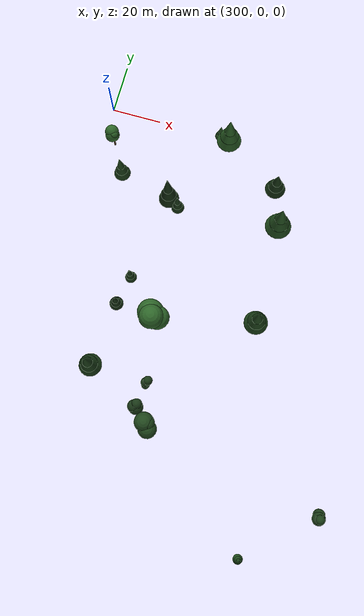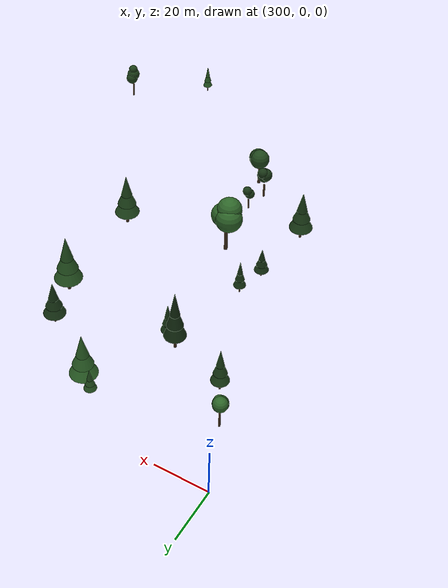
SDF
<sdf version="1.9">
 <world name="detection_world_terrain">
  <model name="tree_2">
   <static>true</static>
   <pose>343.67 -84.83 13.31 0 0 1.64</pose>
   <link name="link">
    <visual name="trunk">
     <pose>0 0 4.16 0 0 0</pose>
     <geometry><cylinder><radius>0.64</radius><length>8.32</length></cylinder></geometry>
     <material><ambient>0.28 0.2 0.12 1</ambient><diffuse>0.28 0.2 0.12 1</diffuse></material>
    </visual>
    <visual name="canopy0">
     <pose>-0.61 0.74 18.41 0 0 0</pose>
     <geometry><sphere><radius>4.48</radius></sphere></geometry>
     <material><ambient>0.178 0.397 0.159 1</ambient><diffuse>0.178 0.397 0.159 1</diffuse></material>
    </visual>
    <visual name="canopy1">
     <pose>-0.09 -1.28 15.65 0 0 0</pose>
     <geometry><sphere><radius>4.35</radius></sphere></geometry>
     <material><ambient>0.178 0.397 0.159 1</ambient><diffuse>0.178 0.397 0.159 1</diffuse></material>
    </visual>
    <visual name="canopy2">
     <pose>1.32 1.50 15.90 0 0 0</pose>
     <geometry><sphere><radius>4.82</radius></sphere></geometry>
     <material><ambient>0.178 0.397 0.159 1</ambient><diffuse>0.178 0.397 0.159 1</diffuse></material>
    </visual>
   </link>
  </model>
  <model name="tree_6">
   <static>true</static>
   <pose>339.26 -39.13 12.38 0 0 3.85</pose>
   <link name="link">
    <visual name="trunk">
     <pose>0 0 2.46 0 0 0</pose>
     <geometry><cylinder><radius>0.30</radius><length>4.92</length></cylinder></geometry>
     <material><ambient>0.28 0.2 0.12 1</ambient><diffuse>0.28 0.2 0.12 1</diffuse></material>
    </visual>
    <visual name="canopy0">
     <pose>0 0 6.33 0 0 0</pose>
     <geometry><cone><radius>2.46</radius><length>5.91</length></cone></geometry>
     <material><ambient>0.101 0.225 0.090 1</ambient><diffuse>0.101 0.225 0.090 1</diffuse></material>
    </visual>
    <visual name="canopy1">
     <pose>0 0 9.14 0 0 0</pose>
     <geometry><cone><radius>1.85</radius><length>5.91</length></cone></geometry>
     <material><ambient>0.101 0.225 0.090 1</ambient><diffuse>0.101 0.225 0.090 1</diffuse></material>
    </visual>
    <visual name="canopy2">
     <pose>0 0 11.95 0 0 0</pose>
     <geometry><cone><radius>1.11</radius><length>5.91</length></cone></geometry>
     <material><ambient>0.101 0.225 0.090 1</ambient><diffuse>0.101 0.225 0.090 1</diffuse></material>
    </visual>
   </link>
  </model>
  <model name="tree_7">
   <static>true</static>
   <pose>351.33 -7.98 12.77 0 0 5.29</pose>
   <link name="link">
    <visual name="trunk">
     <pose>0 0 3.61 0 0 0</pose>
     <geometry><cylinder><radius>0.57</radius><length>7.21</length></cylinder></geometry>
     <material><ambient>0.28 0.2 0.12 1</ambient><diffuse>0.28 0.2 0.12 1</diffuse></material>
    </visual>
    <visual name="canopy0">
     <pose>0 0 9.27 0 0 0</pose>
     <geometry><cone><radius>4.74</radius><length>8.65</length></cone></geometry>
     <material><ambient>0.181 0.402 0.161 1</ambient><diffuse>0.181 0.402 0.161 1</diffuse></material>
    </visual>
    <visual name="canopy1">
     <pose>0 0 13.39 0 0 0</pose>
     <geometry><cone><radius>3.56</radius><length>8.65</length></cone></geometry>
     <material><ambient>0.181 0.402 0.161 1</ambient><diffuse>0.181 0.402 0.161 1</diffuse></material>
    </visual>
    <visual name="canopy2">
     <pose>0 0 17.52 0 0 0</pose>
     <geometry><cone><radius>2.13</radius><length>8.65</length></cone></geometry>
     <material><ambient>0.181 0.402 0.161 1</ambient><diffuse>0.181 0.402 0.161 1</diffuse></material>
    </visual>
   </link>
  </model>
  <model name="tree_12">
   <static>true</static>
   <pose>335.19 -36.99 11.69 0 0 6.04</pose>
   <link name="link">
    <visual name="trunk">
     <pose>0 0 4.15 0 0 0</pose>
     <geometry><cylinder><radius>0.46</radius><length>8.30</length></cylinder></geometry>
     <material><ambient>0.28 0.2 0.12 1</ambient><diffuse>0.28 0.2 0.12 1</diffuse></material>
    </visual>
    <visual name="canopy0">
     <pose>0 0 10.68 0 0 0</pose>
     <geometry><cone><radius>3.87</radius><length>9.97</length></cone></geometry>
     <material><ambient>0.083 0.185 0.074 1</ambient><diffuse>0.083 0.185 0.074 1</diffuse></material>
    </visual>
    <visual name="canopy1">
     <pose>0 0 15.42 0 0 0</pose>
     <geometry><cone><radius>2.90</radius><length>9.97</length></cone></geometry>
     <material><ambient>0.083 0.185 0.074 1</ambient><diffuse>0.083 0.185 0.074 1</diffuse></material>
    </visual>
    <visual name="canopy2">
     <pose>0 0 20.17 0 0 0</pose>
     <geometry><cone><radius>1.74</radius><length>9.97</length></cone></geometry>
     <material><ambient>0.083 0.185 0.074 1</ambient><diffuse>0.083 0.185 0.074 1</diffuse></material>
    </visual>
   </link>
  </model>
  <model name="tree_16">
   <static>true</static>
   <pose>314.33 -30.63 9.79 0 0 5.26</pose>
   <link name="link">
    <visual name="trunk">
     <pose>0 0 3.00 0 0 0</pose>
     <geometry><cylinder><radius>0.38</radius><length>5.99</length></cylinder></geometry>
     <material><ambient>0.28 0.2 0.12 1</ambient><diffuse>0.28 0.2 0.12 1</diffuse></material>
    </visual>
    <visual name="canopy0">
     <pose>0 0 7.70 0 0 0</pose>
     <geometry><cone><radius>3.17</radius><length>7.19</length></cone></geometry>
     <material><ambient>0.120 0.266 0.106 1</ambient><diffuse>0.120 0.266 0.106 1</diffuse></material>
    </visual>
    <visual name="canopy1">
     <pose>0 0 11.13 0 0 0</pose>
     <geometry><cone><radius>2.37</radius><length>7.19</length></cone></geometry>
     <material><ambient>0.120 0.266 0.106 1</ambient><diffuse>0.120 0.266 0.106 1</diffuse></material>
    </visual>
    <visual name="canopy2">
     <pose>0 0 14.55 0 0 0</pose>
     <geometry><cone><radius>1.42</radius><length>7.19</length></cone></geometry>
     <material><ambient>0.120 0.266 0.106 1</ambient><diffuse>0.120 0.266 0.106 1</diffuse></material>
    </visual>
   </link>
  </model>
  <model name="tree_23">
   <static>true</static>
   <pose>415.70 -135.94 20.66 0 0 3.51</pose>
   <link name="link">
    <visual name="trunk">
     <pose>0 0 2.72 0 0 0</pose>
     <geometry><cylinder><radius>0.31</radius><length>5.44</length></cylinder></geometry>
     <material><ambient>0.28 0.2 0.12 1</ambient><diffuse>0.28 0.2 0.12 1</diffuse></material>
    </visual>
    <visual name="canopy0">
     <pose>-0.07 0.45 11.90 0 0 0</pose>
     <geometry><sphere><radius>1.67</radius></sphere></geometry>
     <material><ambient>0.111 0.246 0.098 1</ambient><diffuse>0.111 0.246 0.098 1</diffuse></material>
    </visual>
    <visual name="canopy1">
     <pose>0.03 0.23 9.90 0 0 0</pose>
     <geometry><sphere><radius>2.34</radius></sphere></geometry>
     <material><ambient>0.111 0.246 0.098 1</ambient><diffuse>0.111 0.246 0.098 1</diffuse></material>
    </visual>
    <visual name="canopy2">
     <pose>-0.34 -0.75 8.71 0 0 0</pose>
     <geometry><sphere><radius>2.17</radius></sphere></geometry>
     <material><ambient>0.111 0.246 0.098 1</ambient><diffuse>0.111 0.246 0.098 1</diffuse></material>
    </visual>
   </link>
  </model>
  <model name="tree_26">
   <static>true</static>
   <pose>329.70 -70.24 11.73 0 0 3.28</pose>
   <link name="link">
    <visual name="trunk">
     <pose>0 0 2.34 0 0 0</pose>
     <geometry><cylinder><radius>0.26</radius><length>4.67</length></cylinder></geometry>
     <material><ambient>0.28 0.2 0.12 1</ambient><diffuse>0.28 0.2 0.12 1</diffuse></material>
    </visual>
    <visual name="canopy0">
     <pose>0 0 6.01 0 0 0</pose>
     <geometry><cone><radius>2.19</radius><length>5.61</length></cone></geometry>
     <material><ambient>0.100 0.223 0.089 1</ambient><diffuse>0.100 0.223 0.089 1</diffuse></material>
    </visual>
    <visual name="canopy1">
     <pose>0 0 8.68 0 0 0</pose>
     <geometry><cone><radius>1.64</radius><length>5.61</length></cone></geometry>
     <material><ambient>0.100 0.223 0.089 1</ambient><diffuse>0.100 0.223 0.089 1</diffuse></material>
    </visual>
    <visual name="canopy2">
     <pose>0 0 11.35 0 0 0</pose>
     <geometry><cone><radius>0.98</radius><length>5.61</length></cone></geometry>
     <material><ambient>0.100 0.223 0.089 1</ambient><diffuse>0.100 0.223 0.089 1</diffuse></material>
    </visual>
   </link>
  </model>
  <model name="tree_34">
   <static>true</static>
   <pose>393.78 -156.60 18.37 0 0 2.08</pose>
   <link name="link">
    <visual name="trunk">
     <pose>0 0 1.85 0 0 0</pose>
     <geometry><cylinder><radius>0.20</radius><length>3.70</length></cylinder></geometry>
     <material><ambient>0.28 0.2 0.12 1</ambient><diffuse>0.28 0.2 0.12 1</diffuse></material>
    </visual>
    <visual name="canopy0">
     <pose>0 0 4.76 0 0 0</pose>
     <geometry><cone><radius>1.70</radius><length>4.44</length></cone></geometry>
     <material><ambient>0.172 0.383 0.153 1</ambient><diffuse>0.172 0.383 0.153 1</diffuse></material>
    </visual>
    <visual name="canopy1">
     <pose>0 0 6.87 0 0 0</pose>
     <geometry><cone><radius>1.28</radius><length>4.44</length></cone></geometry>
     <material><ambient>0.172 0.383 0.153 1</ambient><diffuse>0.172 0.383 0.153 1</diffuse></material>
    </visual>
    <visual name="canopy2">
     <pose>0 0 8.98 0 0 0</pose>
     <geometry><cone><radius>0.77</radius><length>4.44</length></cone></geometry>
     <material><ambient>0.172 0.383 0.153 1</ambient><diffuse>0.172 0.383 0.153 1</diffuse></material>
    </visual>
   </link>
  </model>
  <model name="tree_36">
   <static>true</static>
   <pose>378.21 -37.89 15.67 0 0 0.00</pose>
   <link name="link">
    <visual name="trunk">
     <pose>0 0 3.84 0 0 0</pose>
     <geometry><cylinder><radius>0.59</radius><length>7.67</length></cylinder></geometry>
     <material><ambient>0.28 0.2 0.12 1</ambient><diffuse>0.28 0.2 0.12 1</diffuse></material>
    </visual>
    <visual name="canopy0">
     <pose>0 0 9.86 0 0 0</pose>
     <geometry><cone><radius>4.91</radius><length>9.21</length></cone></geometry>
     <material><ambient>0.152 0.338 0.135 1</ambient><diffuse>0.152 0.338 0.135 1</diffuse></material>
    </visual>
    <visual name="canopy1">
     <pose>0 0 14.25 0 0 0</pose>
     <geometry><cone><radius>3.68</radius><length>9.21</length></cone></geometry>
     <material><ambient>0.152 0.338 0.135 1</ambient><diffuse>0.152 0.338 0.135 1</diffuse></material>
    </visual>
    <visual name="canopy2">
     <pose>0 0 18.63 0 0 0</pose>
     <geometry><cone><radius>2.21</radius><length>9.21</length></cone></geometry>
     <material><ambient>0.152 0.338 0.135 1</ambient><diffuse>0.152 0.338 0.135 1</diffuse></material>
    </visual>
   </link>
  </model>
  <model name="tree_48">
   <static>true</static>
   <pose>347.18 -107.42 13.98 0 0 0.46</pose>
   <link name="link">
    <visual name="trunk">
     <pose>0 0 2.00 0 0 0</pose>
     <geometry><cylinder><radius>0.28</radius><length>4.00</length></cylinder></geometry>
     <material><ambient>0.28 0.2 0.12 1</ambient><diffuse>0.28 0.2 0.12 1</diffuse></material>
    </visual>
    <visual name="canopy0">
     <pose>0.56 0.63 8.59 0 0 0</pose>
     <geometry><sphere><radius>1.68</radius></sphere></geometry>
     <material><ambient>0.098 0.218 0.087 1</ambient><diffuse>0.098 0.218 0.087 1</diffuse></material>
    </visual>
    <visual name="canopy1">
     <pose>-0.36 0.36 7.12 0 0 0</pose>
     <geometry><sphere><radius>1.76</radius></sphere></geometry>
     <material><ambient>0.098 0.218 0.087 1</ambient><diffuse>0.098 0.218 0.087 1</diffuse></material>
    </visual>
    <visual name="canopy2">
     <pose>-0.64 -0.52 6.35 0 0 0</pose>
     <geometry><sphere><radius>1.48</radius></sphere></geometry>
     <material><ambient>0.098 0.218 0.087 1</ambient><diffuse>0.098 0.218 0.087 1</diffuse></material>
    </visual>
   </link>
  </model>
  <model name="tree_50">
   <static>true</static>
   <pose>379.30 -75.83 16.59 0 0 2.50</pose>
   <link name="link">
    <visual name="trunk">
     <pose>0 0 3.44 0 0 0</pose>
     <geometry><cylinder><radius>0.53</radius><length>6.87</length></cylinder></geometry>
     <material><ambient>0.28 0.2 0.12 1</ambient><diffuse>0.28 0.2 0.12 1</diffuse></material>
    </visual>
    <visual name="canopy0">
     <pose>0 0 8.84 0 0 0</pose>
     <geometry><cone><radius>4.39</radius><length>8.25</length></cone></geometry>
     <material><ambient>0.129 0.287 0.115 1</ambient><diffuse>0.129 0.287 0.115 1</diffuse></material>
    </visual>
    <visual name="canopy1">
     <pose>0 0 12.76 0 0 0</pose>
     <geometry><cone><radius>3.29</radius><length>8.25</length></cone></geometry>
     <material><ambient>0.129 0.287 0.115 1</ambient><diffuse>0.129 0.287 0.115 1</diffuse></material>
    </visual>
    <visual name="canopy2">
     <pose>0 0 16.69 0 0 0</pose>
     <geometry><cone><radius>1.98</radius><length>8.25</length></cone></geometry>
     <material><ambient>0.129 0.287 0.115 1</ambient><diffuse>0.129 0.287 0.115 1</diffuse></material>
    </visual>
   </link>
  </model>
  <model name="tree_51">
   <static>true</static>
   <pose>373.53 -23.22 15.43 0 0 2.90</pose>
   <link name="link">
    <visual name="trunk">
     <pose>0 0 2.86 0 0 0</pose>
     <geometry><cylinder><radius>0.46</radius><length>5.72</length></cylinder></geometry>
     <material><ambient>0.28 0.2 0.12 1</ambient><diffuse>0.28 0.2 0.12 1</diffuse></material>
    </visual>
    <visual name="canopy0">
     <pose>0 0 7.36 0 0 0</pose>
     <geometry><cone><radius>3.84</radius><length>6.87</length></cone></geometry>
     <material><ambient>0.096 0.214 0.086 1</ambient><diffuse>0.096 0.214 0.086 1</diffuse></material>
    </visual>
    <visual name="canopy1">
     <pose>0 0 10.63 0 0 0</pose>
     <geometry><cone><radius>2.88</radius><length>6.87</length></cone></geometry>
     <material><ambient>0.096 0.214 0.086 1</ambient><diffuse>0.096 0.214 0.086 1</diffuse></material>
    </visual>
    <visual name="canopy2">
     <pose>0 0 13.90 0 0 0</pose>
     <geometry><cone><radius>1.73</radius><length>6.87</length></cone></geometry>
     <material><ambient>0.096 0.214 0.086 1</ambient><diffuse>0.096 0.214 0.086 1</diffuse></material>
    </visual>
   </link>
  </model>
  <model name="tree_52">
   <static>true</static>
   <pose>347.46 -5.68 12.38 0 0 0.05</pose>
   <link name="link">
    <visual name="trunk">
     <pose>0 0 1.75 0 0 0</pose>
     <geometry><cylinder><radius>0.26</radius><length>3.51</length></cylinder></geometry>
     <material><ambient>0.28 0.2 0.12 1</ambient><diffuse>0.28 0.2 0.12 1</diffuse></material>
    </visual>
    <visual name="canopy0">
     <pose>0 0 4.51 0 0 0</pose>
     <geometry><cone><radius>2.16</radius><length>4.21</length></cone></geometry>
     <material><ambient>0.148 0.328 0.131 1</ambient><diffuse>0.148 0.328 0.131 1</diffuse></material>
    </visual>
    <visual name="canopy1">
     <pose>0 0 6.52 0 0 0</pose>
     <geometry><cone><radius>1.62</radius><length>4.21</length></cone></geometry>
     <material><ambient>0.148 0.328 0.131 1</ambient><diffuse>0.148 0.328 0.131 1</diffuse></material>
    </visual>
    <visual name="canopy2">
     <pose>0 0 8.52 0 0 0</pose>
     <geometry><cone><radius>0.97</radius><length>4.21</length></cone></geometry>
     <material><ambient>0.148 0.328 0.131 1</ambient><diffuse>0.148 0.328 0.131 1</diffuse></material>
    </visual>
   </link>
  </model>
  <model name="tree_58">
   <static>true</static>
   <pose>345.76 -116.60 13.62 0 0 3.90</pose>
   <link name="link">
    <visual name="trunk">
     <pose>0 0 2.68 0 0 0</pose>
     <geometry><cylinder><radius>0.38</radius><length>5.37</length></cylinder></geometry>
     <material><ambient>0.28 0.2 0.12 1</ambient><diffuse>0.28 0.2 0.12 1</diffuse></material>
    </visual>
    <visual name="canopy0">
     <pose>0.32 -0.28 10.25 0 0 0</pose>
     <geometry><sphere><radius>2.37</radius></sphere></geometry>
     <material><ambient>0.096 0.213 0.085 1</ambient><diffuse>0.096 0.213 0.085 1</diffuse></material>
    </visual>
    <visual name="canopy1">
     <pose>-0.04 0.37 9.66 0 0 0</pose>
     <geometry><sphere><radius>2.63</radius></sphere></geometry>
     <material><ambient>0.096 0.213 0.085 1</ambient><diffuse>0.096 0.213 0.085 1</diffuse></material>
    </visual>
    <visual name="canopy2">
     <pose>-0.84 -0.38 11.29 0 0 0</pose>
     <geometry><sphere><radius>1.97</radius></sphere></geometry>
     <material><ambient>0.096 0.213 0.085 1</ambient><diffuse>0.096 0.213 0.085 1</diffuse></material>
    </visual>
   </link>
  </model>
  <model name="tree_61">
   <static>true</static>
   <pose>307.05 -17.92 8.97 0 0 0.53</pose>
   <link name="link">
    <visual name="trunk">
     <pose>0 0 3.03 0 0 0</pose>
     <geometry><cylinder><radius>0.35</radius><length>6.07</length></cylinder></geometry>
     <material><ambient>0.28 0.2 0.12 1</ambient><diffuse>0.28 0.2 0.12 1</diffuse></material>
    </visual>
    <visual name="canopy0">
     <pose>-0.10 0.51 11.22 0 0 0</pose>
     <geometry><sphere><radius>2.61</radius></sphere></geometry>
     <material><ambient>0.179 0.398 0.159 1</ambient><diffuse>0.179 0.398 0.159 1</diffuse></material>
    </visual>
    <visual name="canopy1">
     <pose>-0.20 -0.50 10.39 0 0 0</pose>
     <geometry><sphere><radius>2.74</radius></sphere></geometry>
     <material><ambient>0.179 0.398 0.159 1</ambient><diffuse>0.179 0.398 0.159 1</diffuse></material>
    </visual>
    <visual name="canopy2">
     <pose>0.15 -0.80 11.22 0 0 0</pose>
     <geometry><sphere><radius>2.01</radius></sphere></geometry>
     <material><ambient>0.179 0.398 0.159 1</ambient><diffuse>0.179 0.398 0.159 1</diffuse></material>
    </visual>
   </link>
  </model>
  <model name="tree_64">
   <static>true</static>
   <pose>350.93 -122.26 13.73 0 0 1.32</pose>
   <link name="link">
    <visual name="trunk">
     <pose>0 0 3.42 0 0 0</pose>
     <geometry><cylinder><radius>0.56</radius><length>6.83</length></cylinder></geometry>
     <material><ambient>0.28 0.2 0.12 1</ambient><diffuse>0.28 0.2 0.12 1</diffuse></material>
    </visual>
    <visual name="canopy0">
     <pose>1.17 -0.13 12.40 0 0 0</pose>
     <geometry><sphere><radius>2.95</radius></sphere></geometry>
     <material><ambient>0.124 0.275 0.110 1</ambient><diffuse>0.124 0.275 0.110 1</diffuse></material>
    </visual>
    <visual name="canopy1">
     <pose>1.07 0.82 12.32 0 0 0</pose>
     <geometry><sphere><radius>3.52</radius></sphere></geometry>
     <material><ambient>0.124 0.275 0.110 1</ambient><diffuse>0.124 0.275 0.110 1</diffuse></material>
    </visual>
    <visual name="canopy2">
     <pose>-0.49 -1.31 10.96 0 0 0</pose>
     <geometry><sphere><radius>3.38</radius></sphere></geometry>
     <material><ambient>0.124 0.275 0.110 1</ambient><diffuse>0.124 0.275 0.110 1</diffuse></material>
    </visual>
   </link>
  </model>
  <model name="tree_65">
   <static>true</static>
   <pose>324.90 -106.15 11.37 0 0 5.40</pose>
   <link name="link">
    <visual name="trunk">
     <pose>0 0 3.40 0 0 0</pose>
     <geometry><cylinder><radius>0.51</radius><length>6.80</length></cylinder></geometry>
     <material><ambient>0.28 0.2 0.12 1</ambient><diffuse>0.28 0.2 0.12 1</diffuse></material>
    </visual>
    <visual name="canopy0">
     <pose>0 0 8.74 0 0 0</pose>
     <geometry><cone><radius>4.25</radius><length>8.16</length></cone></geometry>
     <material><ambient>0.115 0.255 0.102 1</ambient><diffuse>0.115 0.255 0.102 1</diffuse></material>
    </visual>
    <visual name="canopy1">
     <pose>0 0 12.62 0 0 0</pose>
     <geometry><cone><radius>3.19</radius><length>8.16</length></cone></geometry>
     <material><ambient>0.115 0.255 0.102 1</ambient><diffuse>0.115 0.255 0.102 1</diffuse></material>
    </visual>
    <visual name="canopy2">
     <pose>0 0 16.50 0 0 0</pose>
     <geometry><cone><radius>1.91</radius><length>8.16</length></cone></geometry>
     <material><ambient>0.115 0.255 0.102 1</ambient><diffuse>0.115 0.255 0.102 1</diffuse></material>
    </visual>
   </link>
  </model>
  <model name="tree_68">
   <static>true</static>
   <pose>327.23 -81.26 11.58 0 0 4.60</pose>
   <link name="link">
    <visual name="trunk">
     <pose>0 0 2.04 0 0 0</pose>
     <geometry><cylinder><radius>0.31</radius><length>4.08</length></cylinder></geometry>
     <material><ambient>0.28 0.2 0.12 1</ambient><diffuse>0.28 0.2 0.12 1</diffuse></material>
    </visual>
    <visual name="canopy0">
     <pose>0 0 5.25 0 0 0</pose>
     <geometry><cone><radius>2.60</radius><length>4.90</length></cone></geometry>
     <material><ambient>0.092 0.204 0.081 1</ambient><diffuse>0.092 0.204 0.081 1</diffuse></material>
    </visual>
    <visual name="canopy1">
     <pose>0 0 7.58 0 0 0</pose>
     <geometry><cone><radius>1.95</radius><length>4.90</length></cone></geometry>
     <material><ambient>0.092 0.204 0.081 1</ambient><diffuse>0.092 0.204 0.081 1</diffuse></material>
    </visual>
    <visual name="canopy2">
     <pose>0 0 9.91 0 0 0</pose>
     <geometry><cone><radius>1.17</radius><length>4.90</length></cone></geometry>
     <material><ambient>0.092 0.204 0.081 1</ambient><diffuse>0.092 0.204 0.081 1</diffuse></material>
    </visual>
   </link>
  </model>
 </world>
</sdf>
